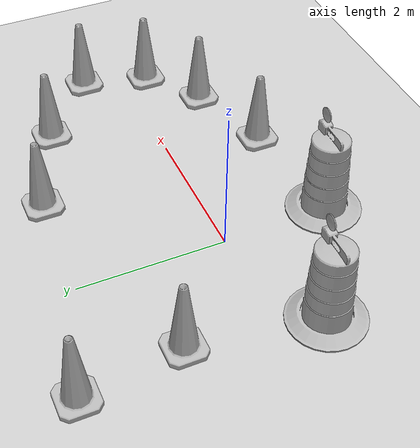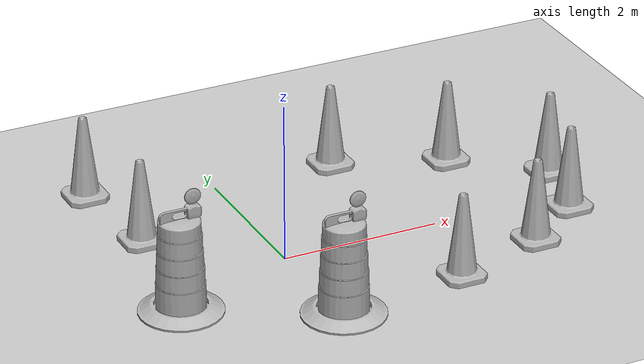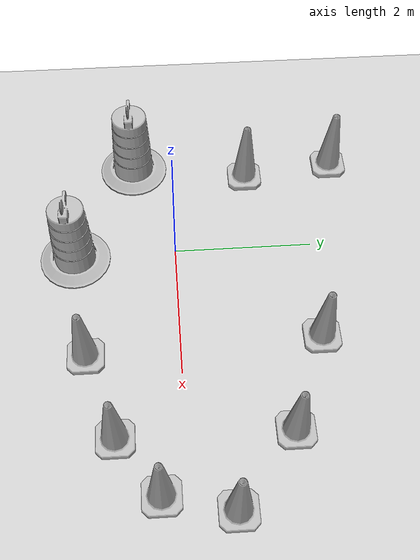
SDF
<sdf version="1.7">
 <world name="default">
  <light name="sun" type="directional">
   <pose>0 0 10 0 -0 0</pose>
   <diffuse>0.8 0.8 0.8 1</diffuse>
   <specular>0.2 0.2 0.2 1</specular>
   <attenuation>
    <range>1000</range>
    <constant>0.9</constant>
    <linear>0.01</linear>
    <quadratic>0.001</quadratic>
   </attenuation>
   <direction>-0.5 0.1 -0.9</direction>
   <spot><inner_angle>0</inner_angle><outer_angle>0</outer_angle><falloff>0</falloff></spot>
  </light>
  <model name="ground_plane">
   <static>1</static>
   <link name="link">
    <collision name="collision">
     <geometry><plane><normal>0 0 1</normal><size>100 100</size></plane></geometry>
     <surface>
      <contact><collide_bitmask>65535</collide_bitmask></contact>
      <friction><ode><mu>100</mu><mu2>50</mu2></ode></friction>
     </surface>
    </collision>
    <visual name="visual">
     <cast_shadows>0</cast_shadows>
     <geometry><plane><normal>0 0 1</normal><size>100 100</size></plane></geometry>
     <material>
      <script><uri>file://media/materials/scripts/gazebo.material</uri><name>Gazebo/Grey</name></script>
     </material>
    </visual>
   </link>
  </model>
  <gravity>0 0 -9.8</gravity>
  <magnetic_field>6e-06 2.3e-05 -4.2e-05</magnetic_field>
  <atmosphere type="adiabatic"/>
  <physics type="ode">
   <max_step_size>0.001</max_step_size>
   <real_time_factor>1</real_time_factor>
   <real_time_update_rate>1000</real_time_update_rate>
  </physics>
  <scene><ambient>0.4 0.4 0.4 1</ambient><background>0.7 0.7 0.7 1</background><shadows>1</shadows></scene>
  <spherical_coordinates>
   <surface_model>EARTH_WGS84</surface_model>
   <latitude_deg>0</latitude_deg>
   <longitude_deg>0</longitude_deg>
   <elevation>0</elevation>
   <heading_deg>0</heading_deg>
  </spherical_coordinates>
  <model name="Construction Barrel">
   <link name="link">
    <inertial>
     <pose>0 0 0.4 0 -0 0</pose>
     <mass>500</mass>
     <inertia><ixx>51.2096</ixx><iyy>51.2096</iyy><izz>25</izz><ixy>0</ixy><ixz>0</ixz><iyz>0</iyz></inertia>
    </inertial>
    <collision name="collision">
     <geometry><mesh><uri>model://construction_barrel/meshes/construction_barrel.dae</uri></mesh></geometry>
    </collision>
    <visual name="visual">
     <geometry><mesh><uri>model://construction_barrel/meshes/construction_barrel.dae</uri></mesh></geometry>
    </visual>
   </link>
   <pose>0.057322 -1.46588 -2e-06 1e-06 8e-06 -2.8e-05</pose>
  </model>
  <model name="Construction Cone">
   <link name="link">
    <collision name="collision">
     <geometry>
      <mesh><scale>10 10 10</scale><uri>model://construction_cone/meshes/construction_cone.dae</uri></mesh>
     </geometry>
    </collision>
    <visual name="visual">
     <geometry>
      <mesh><scale>10 10 10</scale><uri>model://construction_cone/meshes/construction_cone.dae</uri></mesh>
     </geometry>
    </visual>
    <inertial>
     <inertia><ixx>1</ixx><ixy>0</ixy><ixz>0</ixz><iyy>1</iyy><iyz>0</iyz><izz>1</izz></inertia>
     <mass>1</mass>
    </inertial>
   </link>
   <pose>2.8895 -0.89601 -0 -3e-06 -1e-06 -0</pose>
  </model>
  <model name="Construction Barrel_0">
   <link name="link">
    <inertial>
     <pose>0 0 0.4 0 -0 0</pose>
     <mass>500</mass>
     <inertia><ixx>51.2096</ixx><iyy>51.2096</iyy><izz>25</izz><ixy>0</ixy><ixz>0</ixz><iyz>0</iyz></inertia>
    </inertial>
    <collision name="collision">
     <geometry><mesh><uri>model://construction_barrel/meshes/construction_barrel.dae</uri></mesh></geometry>
    </collision>
    <visual name="visual">
     <geometry><mesh><uri>model://construction_barrel/meshes/construction_barrel.dae</uri></mesh></geometry>
    </visual>
   </link>
   <pose>-1.59872 -0.58659 0 0 0 -2.7e-05</pose>
  </model>
  <model name="Construction Cone_0">
   <link name="link">
    <collision name="collision">
     <geometry>
      <mesh><scale>10 10 10</scale><uri>model://construction_cone/meshes/construction_cone.dae</uri></mesh>
     </geometry>
    </collision>
    <visual name="visual">
     <geometry>
      <mesh><scale>10 10 10</scale><uri>model://construction_cone/meshes/construction_cone.dae</uri></mesh>
     </geometry>
    </visual>
    <inertial>
     <inertia><ixx>1</ixx><ixy>0</ixy><ixz>0</ixz><iyy>1</iyy><iyz>0</iyz><izz>1</izz></inertia>
     <mass>1</mass>
    </inertial>
   </link>
   <pose>3.89183 0.593368 -0 0 -0 0</pose>
  </model>
  <model name="Construction Cone_1">
   <link name="link">
    <collision name="collision">
     <geometry>
      <mesh><scale>10 10 10</scale><uri>model://construction_cone/meshes/construction_cone.dae</uri></mesh>
     </geometry>
    </collision>
    <visual name="visual">
     <geometry>
      <mesh><scale>10 10 10</scale><uri>model://construction_cone/meshes/construction_cone.dae</uri></mesh>
     </geometry>
    </visual>
    <inertial>
     <inertia><ixx>1</ixx><ixy>0</ixy><ixz>0</ixz><iyy>1</iyy><iyz>0</iyz><izz>1</izz></inertia>
     <mass>1</mass>
    </inertial>
   </link>
   <pose>2.89918 1.41776 -0 0 -0 0</pose>
  </model>
  <model name="Construction Cone_2">
   <link name="link">
    <collision name="collision">
     <geometry>
      <mesh><scale>10 10 10</scale><uri>model://construction_cone/meshes/construction_cone.dae</uri></mesh>
     </geometry>
    </collision>
    <visual name="visual">
     <geometry>
      <mesh><scale>10 10 10</scale><uri>model://construction_cone/meshes/construction_cone.dae</uri></mesh>
     </geometry>
    </visual>
    <inertial>
     <inertia><ixx>1</ixx><ixy>0</ixy><ixz>0</ixz><iyy>1</iyy><iyz>0</iyz><izz>1</izz></inertia>
     <mass>1</mass>
    </inertial>
   </link>
   <pose>-1.34867 1.13574 -5e-06 -4e-06 1e-06 0</pose>
  </model>
  <model name="Construction Cone_3">
   <link name="link">
    <collision name="collision">
     <geometry>
      <mesh><scale>10 10 10</scale><uri>model://construction_cone/meshes/construction_cone.dae</uri></mesh>
     </geometry>
    </collision>
    <visual name="visual">
     <geometry>
      <mesh><scale>10 10 10</scale><uri>model://construction_cone/meshes/construction_cone.dae</uri></mesh>
     </geometry>
    </visual>
    <inertial>
     <inertia><ixx>1</ixx><ixy>0</ixy><ixz>0</ixz><iyy>1</iyy><iyz>0</iyz><izz>1</izz></inertia>
     <mass>1</mass>
    </inertial>
   </link>
   <pose>-1.52282 2.4799 -0 0 -0 0</pose>
  </model>
  <model name="Construction Cone_4">
   <link name="link">
    <collision name="collision">
     <geometry>
      <mesh><scale>10 10 10</scale><uri>model://construction_cone/meshes/construction_cone.dae</uri></mesh>
     </geometry>
    </collision>
    <visual name="visual">
     <geometry>
      <mesh><scale>10 10 10</scale><uri>model://construction_cone/meshes/construction_cone.dae</uri></mesh>
     </geometry>
    </visual>
    <inertial>
     <inertia><ixx>1</ixx><ixy>0</ixy><ixz>0</ixz><iyy>1</iyy><iyz>0</iyz><izz>1</izz></inertia>
     <mass>1</mass>
    </inertial>
   </link>
   <pose>1.55212 1.94707 -4e-06 4e-06 -1e-06 0</pose>
  </model>
  <model name="Construction Cone_5">
   <link name="link">
    <collision name="collision">
     <geometry>
      <mesh><scale>10 10 10</scale><uri>model://construction_cone/meshes/construction_cone.dae</uri></mesh>
     </geometry>
    </collision>
    <visual name="visual">
     <geometry>
      <mesh><scale>10 10 10</scale><uri>model://construction_cone/meshes/construction_cone.dae</uri></mesh>
     </geometry>
    </visual>
    <inertial>
     <inertia><ixx>1</ixx><ixy>0</ixy><ixz>0</ixz><iyy>1</iyy><iyz>0</iyz><izz>1</izz></inertia>
     <mass>1</mass>
    </inertial>
   </link>
   <pose>3.66106 -0.331847 -0 0 -0 0</pose>
  </model>
  <model name="Construction Cone_6">
   <link name="link">
    <collision name="collision">
     <geometry>
      <mesh><scale>10 10 10</scale><uri>model://construction_cone/meshes/construction_cone.dae</uri></mesh>
     </geometry>
    </collision>
    <visual name="visual">
     <geometry>
      <mesh><scale>10 10 10</scale><uri>model://construction_cone/meshes/construction_cone.dae</uri></mesh>
     </geometry>
    </visual>
    <inertial>
     <inertia><ixx>1</ixx><ixy>0</ixy><ixz>0</ixz><iyy>1</iyy><iyz>0</iyz><izz>1</izz></inertia>
     <mass>1</mass>
    </inertial>
   </link>
   <pose>1.68394 -1.28866 -0 0 -0 0</pose>
  </model>
 </world>
</sdf>
